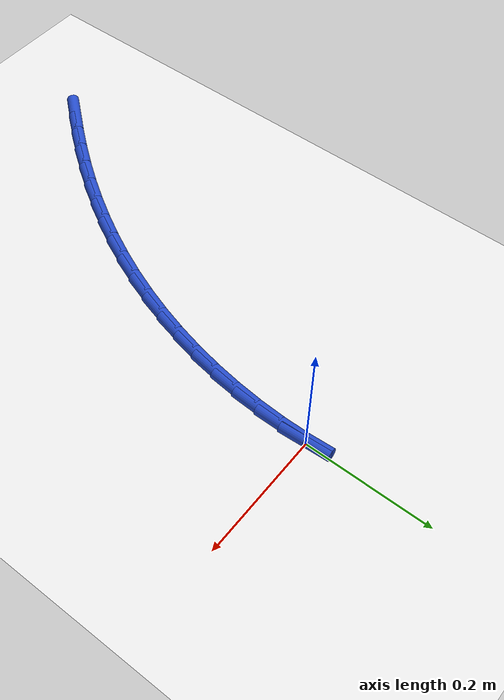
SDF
<sdf version="1.6">
 <world name="default">
  <model name="ground_plane">
   <static>1</static>
   <link name="link">
    <collision name="collision">
     <geometry><plane><normal>0 0 1</normal><size>100 100</size></plane></geometry>
     <surface><friction><ode><mu>100</mu><mu2>50</mu2></ode></friction></surface>
    </collision>
    <visual name="visual">
     <cast_shadows>0</cast_shadows>
     <geometry><plane><normal>0 0 1</normal><size>100 100</size></plane></geometry>
     <material>
      <script><uri>file://media/materials/scripts/gazebo.material</uri><name>Gazebo/WhiteGlow</name></script>
     </material>
    </visual>
   </link>
  </model>
  <model name="line">
   <link name="link_0">
    <pose>2.6020852139652106e-17 1.5959455978986625e-16 0.01 0 1.57 -1.5124819271053642</pose>
    <collision name="collision">
     <geometry><cylinder><radius>0.01</radius><length>0.08</length></cylinder></geometry>
    </collision>
    <visual name="visual">
     <material>
      <script><name>Gazebo/Blue</name><uri>file://media/materials/scripts/gazebo.material</uri></script>
     </material>
     <geometry><cylinder><radius>0.01</radius><length>0.08</length></cylinder></geometry>
    </visual>
   </link>
   <link name="link_142">
    <pose>-0.27500226177813986 -0.6870629184624015 0.01 0 1.57 0.8639109397736237</pose>
    <collision name="collision">
     <geometry><cylinder><radius>0.01</radius><length>0.08</length></cylinder></geometry>
    </collision>
    <visual name="visual">
     <material>
      <script><name>Gazebo/Blue</name><uri>file://media/materials/scripts/gazebo.material</uri></script>
     </material>
     <geometry><cylinder><radius>0.01</radius><length>0.08</length></cylinder></geometry>
    </visual>
   </link>
   <link name="link_143">
    <pose>-0.24777334807555215 -0.6551837022242123 0.01 0 1.57 0.8923332232739478</pose>
    <collision name="collision">
     <geometry><cylinder><radius>0.01</radius><length>0.08</length></cylinder></geometry>
    </collision>
    <visual name="visual">
     <material>
      <script><name>Gazebo/Blue</name><uri>file://media/materials/scripts/gazebo.material</uri></script>
     </material>
     <geometry><cylinder><radius>0.01</radius><length>0.08</length></cylinder></geometry>
    </visual>
   </link>
   <link name="link_144">
    <pose>-0.22143370892963496 -0.6225092194510674 0.01 0 1.57 0.9228993891124737</pose>
    <collision name="collision">
     <geometry><cylinder><radius>0.01</radius><length>0.08</length></cylinder></geometry>
    </collision>
    <visual name="visual">
     <material>
      <script><name>Gazebo/Blue</name><uri>file://media/materials/scripts/gazebo.material</uri></script>
     </material>
     <geometry><cylinder><radius>0.01</radius><length>0.08</length></cylinder></geometry>
    </visual>
   </link>
   <link name="link_145">
    <pose>-0.19608858480749808 -0.5890233993460187 0.01 0 1.57 0.9556615203856907</pose>
    <collision name="collision">
     <geometry><cylinder><radius>0.01</radius><length>0.08</length></cylinder></geometry>
    </collision>
    <visual name="visual">
     <material>
      <script><name>Gazebo/Blue</name><uri>file://media/materials/scripts/gazebo.material</uri></script>
     </material>
     <geometry><cylinder><radius>0.01</radius><length>0.08</length></cylinder></geometry>
    </visual>
   </link>
   <link name="link_146">
    <pose>-0.1718432161762507 -0.5547101711121164 0.01 0 1.57 0.9906608620286468</pose>
    <collision name="collision">
     <geometry><cylinder><radius>0.01</radius><length>0.08</length></cylinder></geometry>
    </collision>
    <visual name="visual">
     <material>
      <script><name>Gazebo/Blue</name><uri>file://media/materials/scripts/gazebo.material</uri></script>
     </material>
     <geometry><cylinder><radius>0.01</radius><length>0.08</length></cylinder></geometry>
    </visual>
   </link>
   <link name="link_147">
    <pose>-0.14880284350300352 -0.5195534639524134 0.01 0 1.57 1.0279227749487951</pose>
    <collision name="collision">
     <geometry><cylinder><radius>0.01</radius><length>0.08</length></cylinder></geometry>
    </collision>
    <visual name="visual">
     <material>
      <script><name>Gazebo/Blue</name><uri>file://media/materials/scripts/gazebo.material</uri></script>
     </material>
     <geometry><cylinder><radius>0.01</radius><length>0.08</length></cylinder></geometry>
    </visual>
   </link>
   <link name="link_148">
    <pose>-0.1270727072548658 -0.4835372070699608 0.01 0 1.57 1.0674511536741134</pose>
    <collision name="collision">
     <geometry><cylinder><radius>0.01</radius><length>0.08</length></cylinder></geometry>
    </collision>
    <visual name="visual">
     <material>
      <script><name>Gazebo/Blue</name><uri>file://media/materials/scripts/gazebo.material</uri></script>
     </material>
     <geometry><cylinder><radius>0.01</radius><length>0.08</length></cylinder></geometry>
    </visual>
   </link>
   <link name="link_149">
    <pose>-0.10675804789894715 -0.4466453296678096 0.01 0 1.57 1.1092225012466843</pose>
    <collision name="collision">
     <geometry><cylinder><radius>0.01</radius><length>0.08</length></cylinder></geometry>
    </collision>
    <visual name="visual">
     <material>
      <script><name>Gazebo/Blue</name><uri>file://media/materials/scripts/gazebo.material</uri></script>
     </material>
     <geometry><cylinder><radius>0.01</radius><length>0.08</length></cylinder></geometry>
    </visual>
   </link>
   <link name="link_150">
    <pose>-0.08796410590235741 -0.40886176094901144 0.01 0 1.57 1.1531655589530858</pose>
    <collision name="collision">
     <geometry><cylinder><radius>0.01</radius><length>0.08</length></cylinder></geometry>
    </collision>
    <visual name="visual">
     <material>
      <script><name>Gazebo/Blue</name><uri>file://media/materials/scripts/gazebo.material</uri></script>
     </material>
     <geometry><cylinder><radius>0.01</radius><length>0.08</length></cylinder></geometry>
    </visual>
   </link>
   <link name="link_151">
    <pose>-0.07079584373829131 -0.3701713090123649 0.01 0 1.57 1.1982915762191606</pose>
    <collision name="collision">
     <geometry><cylinder><radius>0.01</radius><length>0.08</length></cylinder></geometry>
    </collision>
    <visual name="visual">
     <material>
      <script><name>Gazebo/Blue</name><uri>file://media/materials/scripts/gazebo.material</uri></script>
     </material>
     <geometry><cylinder><radius>0.01</radius><length>0.08</length></cylinder></geometry>
    </visual>
   </link>
   <link name="link_152">
    <pose>-0.05533993734703017 -0.33061659601364485 0.01 0 1.57 1.2432863860697836</pose>
    <collision name="collision">
     <geometry><cylinder><radius>0.01</radius><length>0.08</length></cylinder></geometry>
    </collision>
    <visual name="visual">
     <material>
      <script><name>Gazebo/Blue</name><uri>file://media/materials/scripts/gazebo.material</uri></script>
     </material>
     <geometry><cylinder><radius>0.01</radius><length>0.08</length></cylinder></geometry>
    </visual>
   </link>
   <link name="link_153">
    <pose>-0.041653753805580625 -0.29033290597619127 0.01 0 1.57 1.288319805098749</pose>
    <collision name="collision">
     <geometry><cylinder><radius>0.01</radius><length>0.08</length></cylinder></geometry>
    </collision>
    <visual name="visual">
     <material>
      <script><name>Gazebo/Blue</name><uri>file://media/materials/scripts/gazebo.material</uri></script>
     </material>
     <geometry><cylinder><radius>0.01</radius><length>0.08</length></cylinder></geometry>
    </visual>
   </link>
   <link name="link_154">
    <pose>-0.029792022770964623 -0.24946386129727208 0.01 0 1.57 1.3336963778980093</pose>
    <collision name="collision">
     <geometry><cylinder><radius>0.01</radius><length>0.08</length></cylinder></geometry>
    </collision>
    <visual name="visual">
     <material>
      <script><name>Gazebo/Blue</name><uri>file://media/materials/scripts/gazebo.material</uri></script>
     </material>
     <geometry><cylinder><radius>0.01</radius><length>0.08</length></cylinder></geometry>
    </visual>
   </link>
   <link name="link_155">
    <pose>-0.019809473900204065 -0.20815308437415567 0.01 0 1.57 1.3797206518558218</pose>
    <collision name="collision">
     <geometry><cylinder><radius>0.01</radius><length>0.08</length></cylinder></geometry>
    </collision>
    <visual name="visual">
     <material>
      <script><name>Gazebo/Blue</name><uri>file://media/materials/scripts/gazebo.material</uri></script>
     </material>
     <geometry><cylinder><radius>0.01</radius><length>0.08</length></cylinder></geometry>
    </visual>
   </link>
   <link name="link_156">
    <pose>-0.01176083685032074 -0.16654419760410935 0.01 0 1.57 1.426698917733596</pose>
    <collision name="collision">
     <geometry><cylinder><radius>0.01</radius><length>0.08</length></cylinder></geometry>
    </collision>
    <visual name="visual">
     <material>
      <script><name>Gazebo/Blue</name><uri>file://media/materials/scripts/gazebo.material</uri></script>
     </material>
     <geometry><cylinder><radius>0.01</radius><length>0.08</length></cylinder></geometry>
    </visual>
   </link>
   <link name="link_157">
    <pose>-0.005700841278336849 -0.12478082338440293 0.01 0 1.57 1.4749402474673903</pose>
    <collision name="collision">
     <geometry><cylinder><radius>0.01</radius><length>0.08</length></cylinder></geometry>
    </collision>
    <visual name="visual">
     <material>
      <script><name>Gazebo/Blue</name><uri>file://media/materials/scripts/gazebo.material</uri></script>
     </material>
     <geometry><cylinder><radius>0.01</radius><length>0.08</length></cylinder></geometry>
    </visual>
   </link>
   <link name="link_158">
    <pose>-0.0016842168412741516 -0.0830065841123037 0.01 0 1.57 1.524756468939736</pose>
    <collision name="collision">
     <geometry><cylinder><radius>0.01</radius><length>0.08</length></cylinder></geometry>
    </collision>
    <visual name="visual">
     <material>
      <script><name>Gazebo/Blue</name><uri>file://media/materials/scripts/gazebo.material</uri></script>
     </material>
     <geometry><cylinder><radius>0.01</radius><length>0.08</length></cylinder></geometry>
    </visual>
   </link>
   <link name="link_159">
    <pose>0.00023430680384544517 -0.041365102185079876 0.01 0 1.57 -1.565132028011429</pose>
    <collision name="collision">
     <geometry><cylinder><radius>0.01</radius><length>0.08</length></cylinder></geometry>
    </collision>
    <visual name="visual">
     <material>
      <script><name>Gazebo/Blue</name><uri>file://media/materials/scripts/gazebo.material</uri></script>
     </material>
     <geometry><cylinder><radius>0.01</radius><length>0.08</length></cylinder></geometry>
    </visual>
   </link>
   <link name="link_160">
    <pose>2.7755575615628914e-17 2.983724378680108e-16 0.01 0 1.57 -1.5112292938472585</pose>
    <collision name="collision">
     <geometry><cylinder><radius>0.01</radius><length>0.08</length></cylinder></geometry>
    </collision>
    <visual name="visual">
     <material>
      <script><name>Gazebo/Blue</name><uri>file://media/materials/scripts/gazebo.material</uri></script>
     </material>
     <geometry><cylinder><radius>0.01</radius><length>0.08</length></cylinder></geometry>
    </visual>
   </link>
  </model>
 </world>
</sdf>
